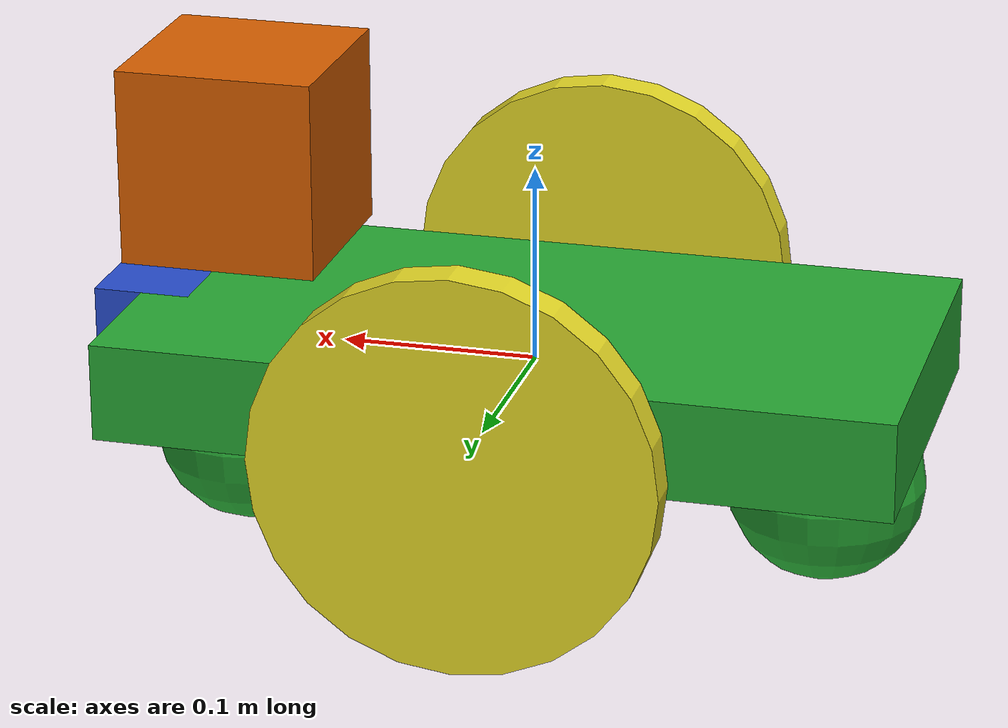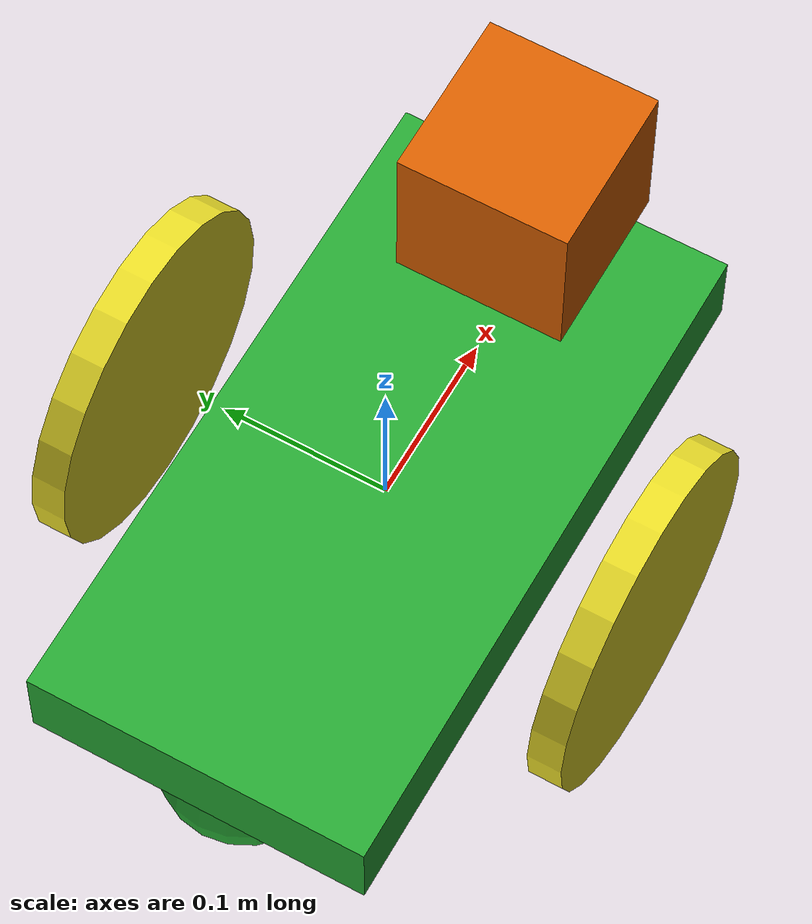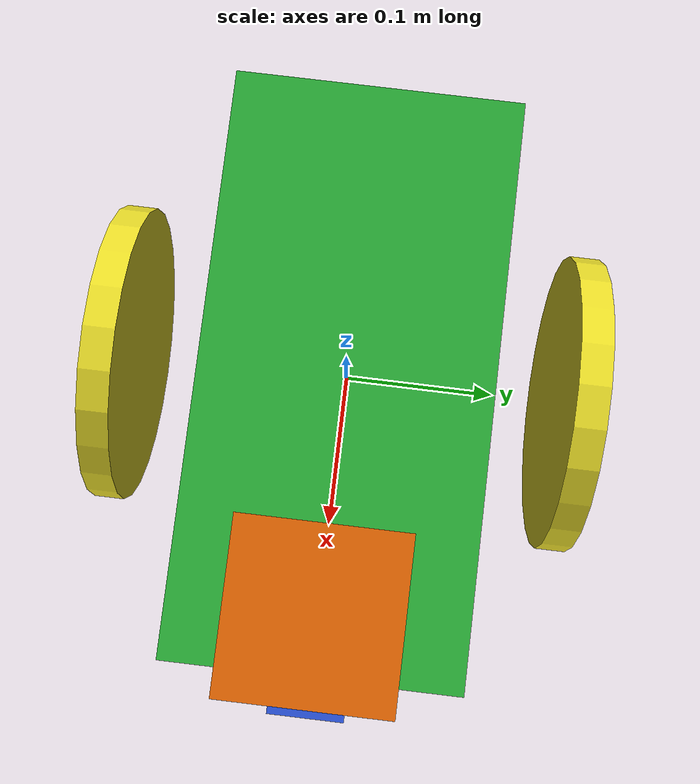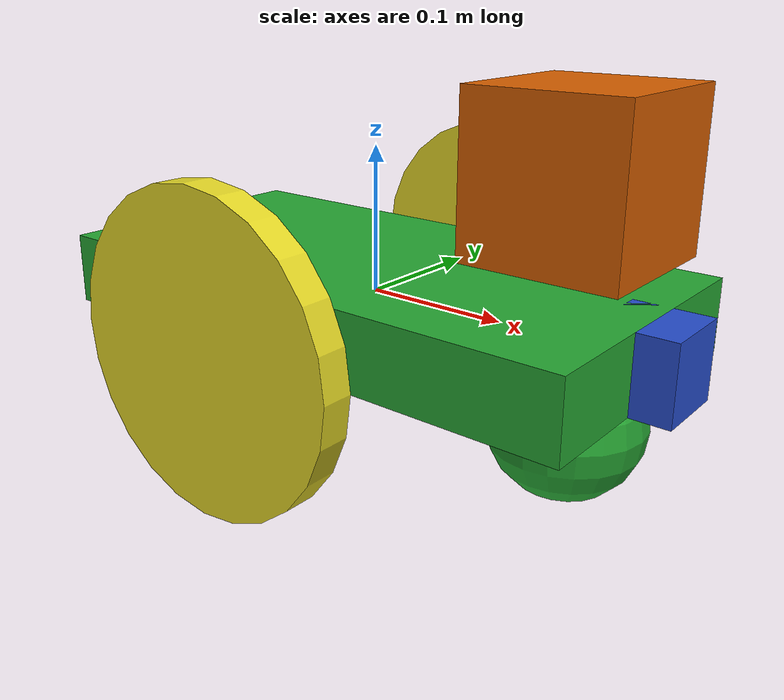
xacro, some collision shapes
<?xml version='1.0'?>

<robot name="my_robot" xmlns:xacro="http://www.ros.org/wiki/xacro">
<xacro:include filename="$(find my_robot)/urdf/my_robot.gazebo"/>

  <link name="robot_footprint"></link>

  <joint name="robot_footprint_joint" type="fixed">
    <origin xyz="0 0 0" rpy="0 0 0" />
    <parent link="robot_footprint"/>
    <child link="chassis" />
  </joint>

  <link name='chassis'>
    <pose>0 0 0.1 0 0 0</pose>

    <inertial>
      <mass value="15.0"/>
      <origin xyz="0.0 0 0" rpy=" 0 0 0"/>
      <inertia
          ixx="0.1" ixy="0" ixz="0"
          iyy="0.1" iyz="0"
          izz="0.1"
      />
    </inertial>

    <collision name='collision'>
      <origin xyz="0 0 0" rpy=" 0 0 0"/>
      <geometry>
        <box size=".4 .2 0.05"/>
      </geometry>
    </collision>

    <visual name='chassis_visual'>
      <origin xyz="0 0 0" rpy=" 0 0 0"/>
      <geometry>
        <box size=".4 .2 0.05"/>
      </geometry>
    </visual>

    <collision name='back_caster_collision'>
      <origin xyz="-0.15 0 -0.05" rpy=" 0 0 0"/>
      <geometry>
        <sphere radius="0.0499"/>
      </geometry>
    </collision>

    <visual name='back_caster_visual'>
      <origin xyz="-0.15 0 -0.05" rpy=" 0 0 0"/>
      <geometry>
        <sphere radius="0.05"/>
      </geometry>
    </visual>

    <collision name='front_caster_collision'>
      <origin xyz="0.15 0 -0.05" rpy=" 0 0 0"/>
      <geometry>
        <sphere radius="0.0499"/>
      </geometry>
    </collision>

    <visual name='front_caster_visual'>
      <origin xyz="0.15 0 -0.05" rpy=" 0 0 0"/>
      <geometry>
        <sphere radius="0.05"/>
      </geometry>
    </visual>

  </link>

  <link name="left_wheel">
    <inertial>
      <mass value="5"/>
      <inertia
          ixx="0.1" ixy="0" ixz="0"
          iyy="0.1" iyz="0"
          izz="0.1"
      />
    </inertial>
    <visual name="left_wheel_visual">
      <origin xyz="0 0 0" rpy="0 1.5707 1.5707"/>
      <geometry>
        <cylinder radius="0.1" length="0.02"/>
      </geometry>
    </visual>
    <collision name="left_wheel_collision">
      <origin xyz="0 0 0" rpy="0 1.5707 1.5707"/>
      <geometry>
        <cylinder radius="0.1" length="0.02"/>
      </geometry>
    </collision>
  </link>

  <joint type="continuous" name="left_wheel_hinge">
    <origin xyz="0 0.15 0" rpy="0 0 0"/>
    <child link="left_wheel"/>
    <parent link="chassis"/>
    <axis xyz="0 1 0" rpy="0 0 0"/>
    <limit effort="10000" velocity="1000"/>
    <dynamics damping="1.0" friction="1.0"/>
  </joint>

  <link name="right_wheel">
    <inertial>
      <mass value="5"/>
      <inertia
          ixx="0.1" ixy="0" ixz="0"
          iyy="0.1" iyz="0"
          izz="0.1"
       />
    </inertial>
    <visual name="right_wheel_visual">
      <origin xyz="0 0 0" rpy="0 1.5707 1.5707"/>
      <geometry>
        <cylinder radius="0.1" length="0.02"/>
      </geometry>
    </visual>
    <collision name="right_wheel_collision">
      <origin xyz="0 0 0" rpy="0 1.5707 1.5707"/>
      <geometry>
        <cylinder radius="0.1" length="0.02"/>
      </geometry>
    </collision>
  </link>

  <joint type="continuous" name="right_wheel_hinge">
    <origin xyz="0 -0.15 0" rpy="0 0 0"/>
    <child link="right_wheel"/>
    <parent link="chassis"/>
    <axis xyz="0 1 0" rpy="0 0 0"/>
    <limit effort="10000" velocity="1000"/>
    <dynamics damping="1.0" friction="1.0"/>
  </joint>

  <link name="camera">
    <inertial>
      <mass value="0.1"/>
      <inertia
            ixx="1e-6" ixy="0" ixz="0"
            iyy="1e-6" iyz="0"
            izz="1e-6"
      />
      <box_inertia m="0.1" x="0.05" y="0.05" z="0.05"/>
    </inertial>
    <visual name="camera_visual">
      <origin xyz="0 0 0" rpy="0 0 0"/>
      <geometry>
        <box size="0.05 0.05 0.05"/>
      </geometry>
    </visual>
    <collision>
      <origin xyz="0 0 0" rpy="0 0 0"/>
      <geometry>
        <box size="0.05 0.05 0.05"/>
      </geometry>
    </collision>
  </link>

  <joint type="fixed" name="camera_joint">
    <origin xyz="0.2 0 0" rpy="0 0 0"/>
    <axis xyz="0 1 0" rpy="0 0 0"/>
    <parent link="chassis"/>
    <child link="camera"/>
  </joint>

  <link name="hokuyo">
    <inertial>
      <mass value="1e-5"/>
      <inertia
            ixx="1e-6" ixy="0" ixz="0"
            iyy="1e-6" iyz="0"
            izz="1e-6"
      />
    </inertial>
    <visual>
      <origin xyz="0 0 0" rpy="0 0 0"/>
      <geometry>
        <mesh filename="package://my_robot/meshes/hokuyo.dae"/>
      </geometry>
    </visual>
    <collision>
      <origin xyz="0 0 0" rpy="0 0 0"/>
      <geometry>
        <box size="0.1 0.1 0.1"/>
      </geometry>
    </collision>
  </link>

  <joint type="fixed" name="hokuyo_joint">
    <axis xyz="0 1 0" rpy="0 0 0"/>
    <origin xyz="0.15 0 0.1" rpy="0 0 0"/>
    <parent link="chassis"/>
    <child link="hokuyo"/>
  </joint>

  <joint name="camera_optical_joint" type="fixed">
    <!-- origin xyz="0 0 0" rpy="-1.5707 0 -1.5707"/-->
    <origin xyz="0 0 0" rpy="0 0 0"/>
    <!-- It was: parent link="camera_link" -->
    <parent link="camera"/>
    <child link="camera_link_optical"/>
    <!--child link="camera_link"/-->
  </joint>

  <link name="camera_link_optical">
  <!--link name="camera_link"-->
  </link>

  <gazebo reference="left_wheel">
    <material>Gazebo/Yellow</material>
  </gazebo>
  <gazebo reference="right_wheel">
    <material>Gazebo/Yellow</material>
  </gazebo>
  <gazebo reference="camera">
    <material>Gazebo/Blue</material>
  </gazebo>
  <gazebo reference="chassis">
    <material>Gazebo/Green</material>
  </gazebo>

</robot>
